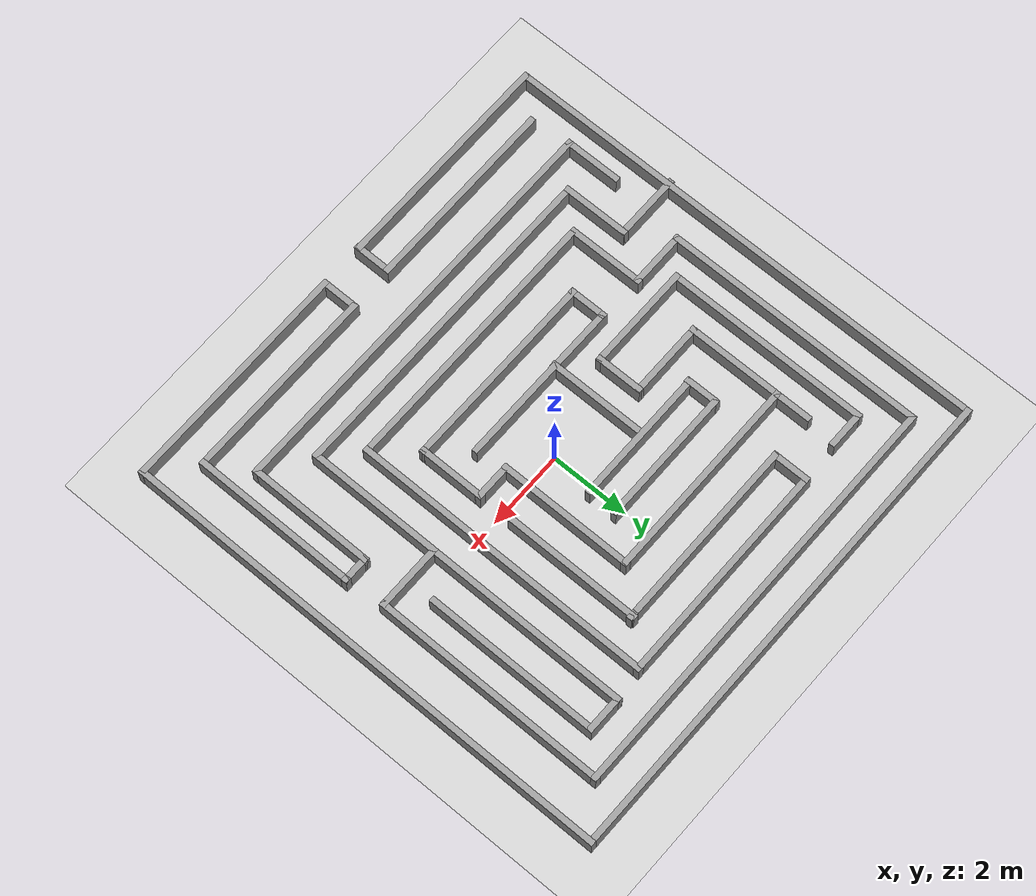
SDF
<sdf version="1.6">
 <world name="default">
  <light name="sun" type="directional">
   <pose>0 0 10 0 -0 0</pose>
   <diffuse>0.8 0.8 0.8 1</diffuse>
   <specular>0.1 0.1 0.1 1</specular>
   <attenuation>
    <range>1000</range>
    <constant>0.9</constant>
    <linear>0.01</linear>
    <quadratic>0.001</quadratic>
   </attenuation>
   <direction>-0.5 0.5 -1</direction>
  </light>
  <model name="ground_plane">
   <static>1</static>
   <link name="link">
    <collision name="collision">
     <geometry><plane><normal>0 0 1</normal><size>100 100</size></plane></geometry>
     <surface><friction><ode><mu>100</mu><mu2>50</mu2></ode></friction></surface>
    </collision>
    <visual name="visual">
     <cast_shadows>0</cast_shadows>
     <geometry><plane><normal>0 0 1</normal><size>100 100</size></plane></geometry>
     <material>
      <script><uri>file://media/materials/scripts/gazebo.material</uri><name>Gazebo/Grey</name></script>
     </material>
    </visual>
   </link>
  </model>
  <gravity>0 0 -9.8</gravity>
  <magnetic_field>6e-06 2.3e-05 -4.2e-05</magnetic_field>
  <atmosphere type="adiabatic"/>
  <physics name="default_physics" default="0" type="ode">
   <max_step_size>0.001</max_step_size>
   <real_time_factor>1</real_time_factor>
   <real_time_update_rate>1000</real_time_update_rate>
  </physics>
  <scene><ambient>0.4 0.4 0.4 1</ambient><background>0.7 0.7 0.7 1</background><shadows>1</shadows></scene>
  <spherical_coordinates>
   <surface_model>EARTH_WGS84</surface_model>
   <latitude_deg>0</latitude_deg>
   <longitude_deg>0</longitude_deg>
   <elevation>0</elevation>
   <heading_deg>0</heading_deg>
  </spherical_coordinates>
  <model name="laby3_0">
   <pose>-0.201423 -0.057556 0 0 -0 0</pose>
   <link name="Wall_100">
    <collision name="Wall_100_Collision">
     <geometry><box><size>5.25 0.15 0.5</size></box></geometry>
     <pose>0 0 0.25 0 -0 0</pose>
    </collision>
    <visual name="Wall_100_Visual">
     <pose>0 0 0.25 0 -0 0</pose>
     <geometry><box><size>5.25 0.15 0.5</size></box></geometry>
     <material>
      <script><uri>file://media/materials/scripts/gazebo.material</uri><name>Gazebo/Grey</name></script>
      <ambient>1 1 1 1</ambient>
     </material>
    </visual>
    <pose>-4.66272 1.97433 0 0 -0 1.5708</pose>
   </link>
   <link name="Wall_101">
    <collision name="Wall_101_Collision">
     <geometry><box><size>1 0.15 0.5</size></box></geometry>
     <pose>0 0 0.25 0 -0 0</pose>
    </collision>
    <visual name="Wall_101_Visual">
     <pose>0 0 0.25 0 -0 0</pose>
     <geometry><box><size>1 0.15 0.5</size></box></geometry>
     <material>
      <script><uri>file://media/materials/scripts/gazebo.material</uri><name>Gazebo/Grey</name></script>
      <ambient>1 1 1 1</ambient>
     </material>
    </visual>
    <pose>-4.23772 4.52433 0 0 -0 0</pose>
   </link>
   <link name="Wall_103">
    <collision name="Wall_103_Collision">
     <geometry><box><size>2.5 0.15 0.5</size></box></geometry>
     <pose>0 0 0.25 0 -0 0</pose>
    </collision>
    <visual name="Wall_103_Visual">
     <pose>0 0 0.25 0 -0 0</pose>
     <geometry><box><size>2.5 0.15 0.5</size></box></geometry>
     <material>
      <script><uri>file://media/materials/scripts/gazebo.material</uri><name>Gazebo/Grey</name></script>
      <ambient>1 1 1 1</ambient>
     </material>
    </visual>
    <pose>-1.3165 -0.060107 0 0 -0 1.5708</pose>
   </link>
   <link name="Wall_105">
    <collision name="Wall_105_Collision">
     <geometry><box><size>0.896241 0.15 0.5</size></box></geometry>
     <pose>0 0 0.25 0 -0 0</pose>
    </collision>
    <visual name="Wall_105_Visual">
     <pose>0 0 0.25 0 -0 0</pose>
     <geometry><box><size>0.896241 0.15 0.5</size></box></geometry>
     <material>
      <script><uri>file://media/materials/scripts/gazebo.material</uri><name>Gazebo/Grey</name></script>
      <ambient>1 1 1 1</ambient>
     </material>
    </visual>
    <pose>-2.9165 1.59177 0 0 -0 1.5708</pose>
   </link>
   <link name="Wall_106">
    <collision name="Wall_106_Collision">
     <geometry><box><size>3.5 0.15 0.5</size></box></geometry>
     <pose>0 0 0.25 0 -0 0</pose>
    </collision>
    <visual name="Wall_106_Visual">
     <pose>0 0 0.25 0 -0 0</pose>
     <geometry><box><size>3.5 0.15 0.5</size></box></geometry>
     <material>
      <script><uri>file://media/materials/scripts/gazebo.material</uri><name>Gazebo/Grey</name></script>
      <ambient>1 1 1 1</ambient>
     </material>
    </visual>
    <pose>-1.2415 1.96489 0 0 -0 0</pose>
   </link>
   <link name="Wall_108">
    <collision name="Wall_108_Collision">
     <geometry><box><size>3.5 0.15 0.5</size></box></geometry>
     <pose>0 0 0.25 0 -0 0</pose>
    </collision>
    <visual name="Wall_108_Visual">
     <pose>0 0 0.25 0 -0 0</pose>
     <geometry><box><size>3.5 0.15 0.5</size></box></geometry>
     <material>
      <script><uri>file://media/materials/scripts/gazebo.material</uri><name>Gazebo/Grey</name></script>
      <ambient>1 1 1 1</ambient>
     </material>
    </visual>
    <pose>-1.2415 1.24171 0 0 -0 3.14159</pose>
   </link>
   <link name="Wall_110">
    <collision name="Wall_110_Collision">
     <geometry><box><size>1 0.15 0.5</size></box></geometry>
     <pose>0 0 0.25 0 -0 0</pose>
    </collision>
    <visual name="Wall_110_Visual">
     <pose>0 0 0.25 0 -0 0</pose>
     <geometry><box><size>1 0.15 0.5</size></box></geometry>
     <material>
      <script><uri>file://media/materials/scripts/gazebo.material</uri><name>Gazebo/Grey</name></script>
      <ambient>1 1 1 1</ambient>
     </material>
    </visual>
    <pose>-3.91272 3.29933 0 0 -0 1.5708</pose>
   </link>
   <link name="Wall_51">
    <collision name="Wall_51_Collision">
     <geometry><box><size>5.75 0.15 0.5</size></box></geometry>
     <pose>0 0 0.25 0 -0 0</pose>
    </collision>
    <visual name="Wall_51_Visual">
     <pose>0 0 0.25 0 -0 0</pose>
     <geometry><box><size>5.75 0.15 0.5</size></box></geometry>
     <material>
      <script><uri>file://media/materials/scripts/gazebo.material</uri><name>Gazebo/Grey</name></script>
      <ambient>1 1 1 1</ambient>
     </material>
    </visual>
    <pose>-3.48226 -6.33859 0 0 -0 3.14159</pose>
   </link>
   <link name="Wall_52">
    <collision name="Wall_52_Collision">
     <geometry><box><size>12.75 0.15 0.5</size></box></geometry>
     <pose>0 0 0.25 0 -0 0</pose>
    </collision>
    <visual name="Wall_52_Visual">
     <pose>0 0 0.25 0 -0 0</pose>
     <geometry><box><size>12.75 0.15 0.5</size></box></geometry>
     <material>
      <script><uri>file://media/materials/scripts/gazebo.material</uri><name>Gazebo/Grey</name></script>
      <ambient>1 1 1 1</ambient>
     </material>
    </visual>
    <pose>-6.28226 -0.038588 0 0 -0 1.5708</pose>
   </link>
   <link name="Wall_53">
    <collision name="Wall_53_Collision">
     <geometry><box><size>12.75 0.15 0.5</size></box></geometry>
     <pose>0 0 0.25 0 -0 0</pose>
    </collision>
    <visual name="Wall_53_Visual">
     <pose>0 0 0.25 0 -0 0</pose>
     <geometry><box><size>12.75 0.15 0.5</size></box></geometry>
     <material>
      <script><uri>file://media/materials/scripts/gazebo.material</uri><name>Gazebo/Grey</name></script>
      <ambient>1 1 1 1</ambient>
     </material>
    </visual>
    <pose>0.017744 6.26141 0 0 -0 0</pose>
   </link>
   <link name="Wall_54">
    <collision name="Wall_54_Collision">
     <geometry><box><size>12.75 0.15 0.5</size></box></geometry>
     <pose>0 0 0.25 0 -0 0</pose>
    </collision>
    <visual name="Wall_54_Visual">
     <pose>0 0 0.25 0 -0 0</pose>
     <geometry><box><size>12.75 0.15 0.5</size></box></geometry>
     <material>
      <script><uri>file://media/materials/scripts/gazebo.material</uri><name>Gazebo/Grey</name></script>
      <ambient>1 1 1 1</ambient>
     </material>
    </visual>
    <pose>6.31774 -0.038588 0 0 0 -1.5708</pose>
   </link>
   <link name="Wall_55">
    <collision name="Wall_55_Collision">
     <geometry><box><size>6 0.15 0.5</size></box></geometry>
     <pose>0 0 0.25 0 -0 0</pose>
    </collision>
    <visual name="Wall_55_Visual">
     <pose>0 0 0.25 0 -0 0</pose>
     <geometry><box><size>6 0.15 0.5</size></box></geometry>
     <material>
      <script><uri>file://media/materials/scripts/gazebo.material</uri><name>Gazebo/Grey</name></script>
      <ambient>1 1 1 1</ambient>
     </material>
    </visual>
    <pose>3.39274 -6.33859 0 0 -0 3.14159</pose>
   </link>
   <link name="Wall_56">
    <collision name="Wall_56_Collision">
     <geometry><box><size>1 0.15 0.5</size></box></geometry>
     <pose>0 0 0.25 0 -0 0</pose>
    </collision>
    <visual name="Wall_56_Visual">
     <pose>0 0 0.25 0 -0 0</pose>
     <geometry><box><size>1 0.15 0.5</size></box></geometry>
     <material>
      <script><uri>file://media/materials/scripts/gazebo.material</uri><name>Gazebo/Grey</name></script>
      <ambient>1 1 1 1</ambient>
     </material>
    </visual>
    <pose>0.467744 -5.91359 0 0 -0 1.5708</pose>
   </link>
   <link name="Wall_57">
    <collision name="Wall_57_Collision">
     <geometry><box><size>5 0.15 0.5</size></box></geometry>
     <pose>0 0 0.25 0 -0 0</pose>
    </collision>
    <visual name="Wall_57_Visual">
     <pose>0 0 0.25 0 -0 0</pose>
     <geometry><box><size>5 0.15 0.5</size></box></geometry>
     <material>
      <script><uri>file://media/materials/scripts/gazebo.material</uri><name>Gazebo/Grey</name></script>
      <ambient>1 1 1 1</ambient>
     </material>
    </visual>
    <pose>2.89274 -5.48859 0 0 -0 0</pose>
   </link>
   <link name="Wall_58">
    <collision name="Wall_58_Collision">
     <geometry><box><size>4.25 0.15 0.5</size></box></geometry>
     <pose>0 0 0.25 0 -0 0</pose>
    </collision>
    <visual name="Wall_58_Visual">
     <pose>0 0 0.25 0 -0 0</pose>
     <geometry><box><size>4.25 0.15 0.5</size></box></geometry>
     <material>
      <script><uri>file://media/materials/scripts/gazebo.material</uri><name>Gazebo/Grey</name></script>
      <ambient>1 1 1 1</ambient>
     </material>
    </visual>
    <pose>5.31774 -3.43859 0 0 -0 1.5708</pose>
   </link>
   <link name="Wall_59">
    <collision name="Wall_59_Collision">
     <geometry><box><size>0.75 0.15 0.5</size></box></geometry>
     <pose>0 0 0.25 0 -0 0</pose>
    </collision>
    <visual name="Wall_59_Visual">
     <pose>0 0 0.25 0 -0 0</pose>
     <geometry><box><size>0.75 0.15 0.5</size></box></geometry>
     <material>
      <script><uri>file://media/materials/scripts/gazebo.material</uri><name>Gazebo/Grey</name></script>
      <ambient>1 1 1 1</ambient>
     </material>
    </visual>
    <pose>5.01774 -1.38859 0 0 -0 3.14159</pose>
   </link>
   <link name="Wall_60">
    <collision name="Wall_60_Collision">
     <geometry><box><size>3.25 0.15 0.5</size></box></geometry>
     <pose>0 0 0.25 0 -0 0</pose>
    </collision>
    <visual name="Wall_60_Visual">
     <pose>0 0 0.25 0 -0 0</pose>
     <geometry><box><size>3.25 0.15 0.5</size></box></geometry>
     <material>
      <script><uri>file://media/materials/scripts/gazebo.material</uri><name>Gazebo/Grey</name></script>
      <ambient>1 1 1 1</ambient>
     </material>
    </visual>
    <pose>4.71774 -2.93859 0 0 0 -1.5708</pose>
   </link>
   <link name="Wall_61">
    <collision name="Wall_61_Collision">
     <geometry><box><size>10.5 0.15 0.5</size></box></geometry>
     <pose>0 0 0.25 0 -0 0</pose>
    </collision>
    <visual name="Wall_61_Visual">
     <pose>0 0 0.25 0 -0 0</pose>
     <geometry><box><size>10.5 0.15 0.5</size></box></geometry>
     <material>
      <script><uri>file://media/materials/scripts/gazebo.material</uri><name>Gazebo/Grey</name></script>
      <ambient>1 1 1 1</ambient>
     </material>
    </visual>
    <pose>-0.457257 -4.48859 0 0 -0 3.14159</pose>
   </link>
   <link name="Wall_62">
    <collision name="Wall_62_Collision">
     <geometry><box><size>1.5 0.15 0.5</size></box></geometry>
     <pose>0 0 0.25 0 -0 0</pose>
    </collision>
    <visual name="Wall_62_Visual">
     <pose>0 0 0.25 0 -0 0</pose>
     <geometry><box><size>1.5 0.15 0.5</size></box></geometry>
     <material>
      <script><uri>file://media/materials/scripts/gazebo.material</uri><name>Gazebo/Grey</name></script>
      <ambient>1 1 1 1</ambient>
     </material>
    </visual>
    <pose>-5.63226 -3.81359 0 0 -0 1.5708</pose>
   </link>
   <link name="Wall_64">
    <collision name="Wall_64_Collision">
     <geometry><box><size>5 0.15 0.5</size></box></geometry>
     <pose>0 0 0.25 0 -0 0</pose>
    </collision>
    <visual name="Wall_64_Visual">
     <pose>0 0 0.25 0 -0 0</pose>
     <geometry><box><size>5 0.15 0.5</size></box></geometry>
     <material>
      <script><uri>file://media/materials/scripts/gazebo.material</uri><name>Gazebo/Grey</name></script>
      <ambient>1 1 1 1</ambient>
     </material>
    </visual>
    <pose>-3.08566 -5.50541 0 0 -0 0</pose>
   </link>
   <link name="Wall_65">
    <collision name="Wall_65_Collision">
     <geometry><box><size>1 0.15 0.5</size></box></geometry>
     <pose>0 0 0.25 0 -0 0</pose>
    </collision>
    <visual name="Wall_65_Visual">
     <pose>0 0 0.25 0 -0 0</pose>
     <geometry><box><size>1 0.15 0.5</size></box></geometry>
     <material>
      <script><uri>file://media/materials/scripts/gazebo.material</uri><name>Gazebo/Grey</name></script>
      <ambient>1 1 1 1</ambient>
     </material>
    </visual>
    <pose>-0.660656 -5.93041 0 0 0 -1.5708</pose>
   </link>
   <link name="Wall_67">
    <collision name="Wall_67_Collision">
     <geometry><box><size>1.75 0.15 0.5</size></box></geometry>
     <pose>0 0 0.25 0 -0 0</pose>
    </collision>
    <visual name="Wall_67_Visual">
     <pose>0 0 0.25 0 -0 0</pose>
     <geometry><box><size>1.75 0.15 0.5</size></box></geometry>
     <material>
      <script><uri>file://media/materials/scripts/gazebo.material</uri><name>Gazebo/Grey</name></script>
      <ambient>1 1 1 1</ambient>
     </material>
    </visual>
    <pose>-5.53492 -2.15684 0 0 -0 0</pose>
   </link>
   <link name="Wall_68">
    <collision name="Wall_68_Collision">
     <geometry><box><size>1.75 0.15 0.5</size></box></geometry>
     <pose>0 0 0.25 0 -0 0</pose>
    </collision>
    <visual name="Wall_68_Visual">
     <pose>0 0 0.25 0 -0 0</pose>
     <geometry><box><size>1.75 0.15 0.5</size></box></geometry>
     <material>
      <script><uri>file://media/materials/scripts/gazebo.material</uri><name>Gazebo/Grey</name></script>
      <ambient>1 1 1 1</ambient>
     </material>
    </visual>
    <pose>-4.73492 -2.95684 0 0 0 -1.5708</pose>
   </link>
   <link name="Wall_69">
    <collision name="Wall_69_Collision">
     <geometry><box><size>8.5 0.15 0.5</size></box></geometry>
     <pose>0 0 0.25 0 -0 0</pose>
    </collision>
    <visual name="Wall_69_Visual">
     <pose>0 0 0.25 0 -0 0</pose>
     <geometry><box><size>8.5 0.15 0.5</size></box></geometry>
     <material>
      <script><uri>file://media/materials/scripts/gazebo.material</uri><name>Gazebo/Grey</name></script>
      <ambient>1 1 1 1</ambient>
     </material>
    </visual>
    <pose>-0.55992 -3.75684 0 0 -0 0</pose>
   </link>
   <link name="Wall_70">
    <collision name="Wall_70_Collision">
     <geometry><box><size>3.5 0.15 0.5</size></box></geometry>
     <pose>0 0 0.25 0 -0 0</pose>
    </collision>
    <visual name="Wall_70_Visual">
     <pose>0 0 0.25 0 -0 0</pose>
     <geometry><box><size>3.5 0.15 0.5</size></box></geometry>
     <material>
      <script><uri>file://media/materials/scripts/gazebo.material</uri><name>Gazebo/Grey</name></script>
      <ambient>1 1 1 1</ambient>
     </material>
    </visual>
    <pose>3.61508 -2.08184 0 0 -0 1.5708</pose>
   </link>
   <link name="Wall_71">
    <collision name="Wall_71_Collision">
     <geometry><box><size>1.75 0.15 0.5</size></box></geometry>
     <pose>0 0 0.25 0 -0 0</pose>
    </collision>
    <visual name="Wall_71_Visual">
     <pose>0 0 0.25 0 -0 0</pose>
     <geometry><box><size>1.75 0.15 0.5</size></box></geometry>
     <material>
      <script><uri>file://media/materials/scripts/gazebo.material</uri><name>Gazebo/Grey</name></script>
      <ambient>1 1 1 1</ambient>
     </material>
    </visual>
    <pose>4.41508 -0.406841 0 0 -0 0</pose>
   </link>
   <link name="Wall_72">
    <collision name="Wall_72_Collision">
     <geometry><box><size>6 0.15 0.5</size></box></geometry>
     <pose>0 0 0.25 0 -0 0</pose>
    </collision>
    <visual name="Wall_72_Visual">
     <pose>0 0 0.25 0 -0 0</pose>
     <geometry><box><size>6 0.15 0.5</size></box></geometry>
     <material>
      <script><uri>file://media/materials/scripts/gazebo.material</uri><name>Gazebo/Grey</name></script>
      <ambient>1 1 1 1</ambient>
     </material>
    </visual>
    <pose>5.21508 2.51816 0 0 -0 1.5708</pose>
   </link>
   <link name="Wall_73">
    <collision name="Wall_73_Collision">
     <geometry><box><size>10.75 0.15 0.5</size></box></geometry>
     <pose>0 0 0.25 0 -0 0</pose>
    </collision>
    <visual name="Wall_73_Visual">
     <pose>0 0 0.25 0 -0 0</pose>
     <geometry><box><size>10.75 0.15 0.5</size></box></geometry>
     <material>
      <script><uri>file://media/materials/scripts/gazebo.material</uri><name>Gazebo/Grey</name></script>
      <ambient>1 1 1 1</ambient>
     </material>
    </visual>
    <pose>-0.08492 5.44316 0 0 -0 3.14159</pose>
   </link>
   <link name="Wall_74">
    <collision name="Wall_74_Collision">
     <geometry><box><size>6.75 0.15 0.5</size></box></geometry>
     <pose>0 0 0.25 0 -0 0</pose>
    </collision>
    <visual name="Wall_74_Visual">
     <pose>0 0 0.25 0 -0 0</pose>
     <geometry><box><size>6.75 0.15 0.5</size></box></geometry>
     <material>
      <script><uri>file://media/materials/scripts/gazebo.material</uri><name>Gazebo/Grey</name></script>
      <ambient>1 1 1 1</ambient>
     </material>
    </visual>
    <pose>-5.38492 2.14316 0 0 0 -1.5708</pose>
   </link>
   <link name="Wall_75">
    <collision name="Wall_75_Collision">
     <geometry><box><size>1.5 0.15 0.5</size></box></geometry>
     <pose>0 0 0.25 0 -0 0</pose>
    </collision>
    <visual name="Wall_75_Visual">
     <pose>0 0 0.25 0 -0 0</pose>
     <geometry><box><size>1.5 0.15 0.5</size></box></geometry>
     <material>
      <script><uri>file://media/materials/scripts/gazebo.material</uri><name>Gazebo/Grey</name></script>
      <ambient>1 1 1 1</ambient>
     </material>
    </visual>
    <pose>-4.70992 -1.15684 0 0 -0 0</pose>
   </link>
   <link name="Wall_76">
    <collision name="Wall_76_Collision">
     <geometry><box><size>2 0.15 0.5</size></box></geometry>
     <pose>0 0 0.25 0 -0 0</pose>
    </collision>
    <visual name="Wall_76_Visual">
     <pose>0 0 0.25 0 -0 0</pose>
     <geometry><box><size>2 0.15 0.5</size></box></geometry>
     <material>
      <script><uri>file://media/materials/scripts/gazebo.material</uri><name>Gazebo/Grey</name></script>
      <ambient>1 1 1 1</ambient>
     </material>
    </visual>
    <pose>-4.03492 -2.08184 0 0 0 -1.5708</pose>
   </link>
   <link name="Wall_77">
    <collision name="Wall_77_Collision">
     <geometry><box><size>7 0.15 0.5</size></box></geometry>
     <pose>0 0 0.25 0 -0 0</pose>
    </collision>
    <visual name="Wall_77_Visual">
     <pose>0 0 0.25 0 -0 0</pose>
     <geometry><box><size>7 0.15 0.5</size></box></geometry>
     <material>
      <script><uri>file://media/materials/scripts/gazebo.material</uri><name>Gazebo/Grey</name></script>
      <ambient>1 1 1 1</ambient>
     </material>
    </visual>
    <pose>-0.60992 -3.00684 0 0 -0 0</pose>
   </link>
   <link name="Wall_78">
    <collision name="Wall_78_Collision">
     <geometry><box><size>7.75 0.15 0.5</size></box></geometry>
     <pose>0 0 0.25 0 -0 0</pose>
    </collision>
    <visual name="Wall_78_Visual">
     <pose>0 0 0.25 0 -0 0</pose>
     <geometry><box><size>7.75 0.15 0.5</size></box></geometry>
     <material>
      <script><uri>file://media/materials/scripts/gazebo.material</uri><name>Gazebo/Grey</name></script>
      <ambient>1 1 1 1</ambient>
     </material>
    </visual>
    <pose>2.81508 0.793159 0 0 -0 1.5708</pose>
   </link>
   <link name="Wall_79">
    <collision name="Wall_79_Collision">
     <geometry><box><size>5.75 0.15 0.5</size></box></geometry>
     <pose>0 0 0.25 0 -0 0</pose>
    </collision>
    <visual name="Wall_79_Visual">
     <pose>0 0 0.25 0 -0 0</pose>
     <geometry><box><size>5.75 0.15 0.5</size></box></geometry>
     <material>
      <script><uri>file://media/materials/scripts/gazebo.material</uri><name>Gazebo/Grey</name></script>
      <ambient>1 1 1 1</ambient>
     </material>
    </visual>
    <pose>0.01508 4.59316 0 0 -0 3.14159</pose>
   </link>
   <link name="Wall_80">
    <collision name="Wall_80_Collision">
     <geometry><box><size>1 0.15 0.5</size></box></geometry>
     <pose>0 0 0.25 0 -0 0</pose>
    </collision>
    <visual name="Wall_80_Visual">
     <pose>0 0 0.25 0 -0 0</pose>
     <geometry><box><size>1 0.15 0.5</size></box></geometry>
     <material>
      <script><uri>file://media/materials/scripts/gazebo.material</uri><name>Gazebo/Grey</name></script>
      <ambient>1 1 1 1</ambient>
     </material>
    </visual>
    <pose>-2.78492 4.16816 0 0 0 -1.5708</pose>
   </link>
   <link name="Wall_81">
    <collision name="Wall_81_Collision">
     <geometry><box><size>4.75 0.15 0.5</size></box></geometry>
     <pose>0 0 0.25 0 -0 0</pose>
    </collision>
    <visual name="Wall_81_Visual">
     <pose>0 0 0.25 0 -0 0</pose>
     <geometry><box><size>4.75 0.15 0.5</size></box></geometry>
     <material>
      <script><uri>file://media/materials/scripts/gazebo.material</uri><name>Gazebo/Grey</name></script>
      <ambient>1 1 1 1</ambient>
     </material>
    </visual>
    <pose>-0.48492 3.74316 0 0 -0 0</pose>
   </link>
   <link name="Wall_82">
    <collision name="Wall_82_Collision">
     <geometry><box><size>0.369322 0.15 0.5</size></box></geometry>
     <pose>0 0 0.25 0 -0 0</pose>
    </collision>
    <visual name="Wall_82_Visual">
     <pose>0 0 0.25 0 -0 0</pose>
     <geometry><box><size>0.369322 0.15 0.5</size></box></geometry>
     <material>
      <script><uri>file://media/materials/scripts/gazebo.material</uri><name>Gazebo/Grey</name></script>
      <ambient>1 1 1 1</ambient>
     </material>
    </visual>
    <pose>1.92474 3.74316 0 0 -0 0</pose>
   </link>
   <link name="Wall_83">
    <collision name="Wall_83_Collision">
     <geometry><box><size>3.5 0.15 0.5</size></box></geometry>
     <pose>0 0 0.25 0 -0 0</pose>
    </collision>
    <visual name="Wall_83_Visual">
     <pose>0 0 0.25 0 -0 0</pose>
     <geometry><box><size>3.5 0.15 0.5</size></box></geometry>
     <material>
      <script><uri>file://media/materials/scripts/gazebo.material</uri><name>Gazebo/Grey</name></script>
      <ambient>1 1 1 1</ambient>
     </material>
    </visual>
    <pose>2.00457 2.09799 0 0 0 -1.5708</pose>
   </link>
   <link name="Wall_85">
    <collision name="Wall_85_Collision">
     <geometry><box><size>5.25 0.15 0.5</size></box></geometry>
     <pose>0 0 0.25 0 -0 0</pose>
    </collision>
    <visual name="Wall_85_Visual">
     <pose>0 0 0.25 0 -0 0</pose>
     <geometry><box><size>5.25 0.15 0.5</size></box></geometry>
     <material>
      <script><uri>file://media/materials/scripts/gazebo.material</uri><name>Gazebo/Grey</name></script>
      <ambient>1 1 1 1</ambient>
     </material>
    </visual>
    <pose>3.61508 2.14316 0 0 -0 1.5708</pose>
   </link>
   <link name="Wall_86">
    <collision name="Wall_86_Collision">
     <geometry><box><size>1 0.15 0.5</size></box></geometry>
     <pose>0 0 0.25 0 -0 0</pose>
    </collision>
    <visual name="Wall_86_Visual">
     <pose>0 0 0.25 0 -0 0</pose>
     <geometry><box><size>1 0.15 0.5</size></box></geometry>
     <material>
      <script><uri>file://media/materials/scripts/gazebo.material</uri><name>Gazebo/Grey</name></script>
      <ambient>1 1 1 1</ambient>
     </material>
    </visual>
    <pose>4.04008 4.69316 0 0 -0 0</pose>
   </link>
   <link name="Wall_87">
    <collision name="Wall_87_Collision">
     <geometry><box><size>4.5 0.15 0.5</size></box></geometry>
     <pose>0 0 0.25 0 -0 0</pose>
    </collision>
    <visual name="Wall_87_Visual">
     <pose>0 0 0.25 0 -0 0</pose>
     <geometry><box><size>4.5 0.15 0.5</size></box></geometry>
     <material>
      <script><uri>file://media/materials/scripts/gazebo.material</uri><name>Gazebo/Grey</name></script>
      <ambient>1 1 1 1</ambient>
     </material>
    </visual>
    <pose>4.46508 2.51816 0 0 0 -1.5708</pose>
   </link>
   <link name="Wall_89">
    <collision name="Wall_89_Collision">
     <geometry><box><size>4.3365 0.15 0.5</size></box></geometry>
     <pose>0 0 0.25 0 -0 0</pose>
    </collision>
    <visual name="Wall_89_Visual">
     <pose>0 0 0.25 0 -0 0</pose>
     <geometry><box><size>4.3365 0.15 0.5</size></box></geometry>
     <material>
      <script><uri>file://media/materials/scripts/gazebo.material</uri><name>Gazebo/Grey</name></script>
      <ambient>1 1 1 1</ambient>
     </material>
    </visual>
    <pose>-0.805953 -1.21703 0 0 -0 3.13746</pose>
   </link>
   <link name="Wall_90">
    <collision name="Wall_90_Collision">
     <geometry><box><size>1 0.15 0.5</size></box></geometry>
     <pose>0 0 0.25 0 -0 0</pose>
    </collision>
    <visual name="Wall_90_Visual">
     <pose>0 0 0.25 0 -0 0</pose>
     <geometry><box><size>1 0.15 0.5</size></box></geometry>
     <material>
      <script><uri>file://media/materials/scripts/gazebo.material</uri><name>Gazebo/Grey</name></script>
      <ambient>1 1 1 1</ambient>
     </material>
    </visual>
    <pose>-2.89919 -1.64203 0 0 0 -1.5708</pose>
   </link>
   <link name="Wall_91">
    <collision name="Wall_91_Collision">
     <geometry><box><size>5.0865 0.15 0.5</size></box></geometry>
     <pose>0 0 0.25 0 -0 0</pose>
    </collision>
    <visual name="Wall_91_Visual">
     <pose>0 0 0.25 0 -0 0</pose>
     <geometry><box><size>5.0865 0.15 0.5</size></box></geometry>
     <material>
      <script><uri>file://media/materials/scripts/gazebo.material</uri><name>Gazebo/Grey</name></script>
      <ambient>1 1 1 1</ambient>
     </material>
    </visual>
    <pose>-0.430953 -2.06703 0 0 0 -0.003503</pose>
   </link>
   <link name="Wall_92">
    <collision name="Wall_92_Collision">
     <geometry><box><size>1.75 0.15 0.5</size></box></geometry>
     <pose>0 0 0.25 0 -0 0</pose>
    </collision>
    <visual name="Wall_92_Visual">
     <pose>0 0 0.25 0 -0 0</pose>
     <geometry><box><size>1.75 0.15 0.5</size></box></geometry>
     <material>
      <script><uri>file://media/materials/scripts/gazebo.material</uri><name>Gazebo/Grey</name></script>
      <ambient>1 1 1 1</ambient>
     </material>
    </visual>
    <pose>2.03728 -1.27567 0 0 -0 1.5708</pose>
   </link>
   <link name="Wall_93">
    <collision name="Wall_93_Collision">
     <geometry><box><size>1 0.15 0.5</size></box></geometry>
     <pose>0 0 0.25 0 -0 0</pose>
    </collision>
    <visual name="Wall_93_Visual">
     <pose>0 0 0.25 0 -0 0</pose>
     <geometry><box><size>1 0.15 0.5</size></box></geometry>
     <material>
      <script><uri>file://media/materials/scripts/gazebo.material</uri><name>Gazebo/Grey</name></script>
      <ambient>1 1 1 1</ambient>
     </material>
    </visual>
    <pose>1.61228 -0.475671 0 0 -0 3.14159</pose>
   </link>
   <link name="Wall_94">
    <collision name="Wall_94_Collision">
     <geometry><box><size>3.5 0.15 0.5</size></box></geometry>
     <pose>0 0 0.25 0 -0 0</pose>
    </collision>
    <visual name="Wall_94_Visual">
     <pose>0 0 0.25 0 -0 0</pose>
     <geometry><box><size>3.5 0.15 0.5</size></box></geometry>
     <material>
      <script><uri>file://media/materials/scripts/gazebo.material</uri><name>Gazebo/Grey</name></script>
      <ambient>1 1 1 1</ambient>
     </material>
    </visual>
    <pose>1.18728 1.19933 0 0 -0 1.5708</pose>
   </link>
   <link name="Wall_95">
    <collision name="Wall_95_Collision">
     <geometry><box><size>5.25 0.15 0.5</size></box></geometry>
     <pose>0 0 0.25 0 -0 0</pose>
    </collision>
    <visual name="Wall_95_Visual">
     <pose>0 0 0.25 0 -0 0</pose>
     <geometry><box><size>5.25 0.15 0.5</size></box></geometry>
     <material>
      <script><uri>file://media/materials/scripts/gazebo.material</uri><name>Gazebo/Grey</name></script>
      <ambient>1 1 1 1</ambient>
     </material>
    </visual>
    <pose>-1.36272 2.87433 0 0 -0 3.14159</pose>
   </link>
   <link name="Wall_96">
    <collision name="Wall_96_Collision">
     <geometry><box><size>2.5 0.15 0.5</size></box></geometry>
     <pose>0 0 0.25 0 -0 0</pose>
    </collision>
    <visual name="Wall_96_Visual">
     <pose>0 0 0.25 0 -0 0</pose>
     <geometry><box><size>2.5 0.15 0.5</size></box></geometry>
     <material>
      <script><uri>file://media/materials/scripts/gazebo.material</uri><name>Gazebo/Grey</name></script>
      <ambient>1 1 1 1</ambient>
     </material>
    </visual>
    <pose>-3.91272 1.69933 0 0 0 -1.5708</pose>
   </link>
   <link name="Wall_97">
    <collision name="Wall_97_Collision">
     <geometry><box><size>2 0.15 0.5</size></box></geometry>
     <pose>0 0 0.25 0 -0 0</pose>
    </collision>
    <visual name="Wall_97_Visual">
     <pose>0 0 0.25 0 -0 0</pose>
     <geometry><box><size>2 0.15 0.5</size></box></geometry>
     <material>
      <script><uri>file://media/materials/scripts/gazebo.material</uri><name>Gazebo/Grey</name></script>
      <ambient>1 1 1 1</ambient>
     </material>
    </visual>
    <pose>-2.98772 0.524329 0 0 -0 0</pose>
   </link>
   <link name="Wall_98">
    <collision name="Wall_98_Collision">
     <geometry><box><size>1.25 0.15 0.5</size></box></geometry>
     <pose>0 0 0.25 0 -0 0</pose>
    </collision>
    <visual name="Wall_98_Visual">
     <pose>0 0 0.25 0 -0 0</pose>
     <geometry><box><size>1.25 0.15 0.5</size></box></geometry>
     <material>
      <script><uri>file://media/materials/scripts/gazebo.material</uri><name>Gazebo/Grey</name></script>
      <ambient>1 1 1 1</ambient>
     </material>
    </visual>
    <pose>-2.06272 -0.025671 0 0 0 -1.5708</pose>
   </link>
   <link name="Wall_99">
    <collision name="Wall_99_Collision">
     <geometry><box><size>2.75 0.15 0.5</size></box></geometry>
     <pose>0 0 0.25 0 -0 0</pose>
    </collision>
    <visual name="Wall_99_Visual">
     <pose>0 0 0.25 0 -0 0</pose>
     <geometry><box><size>2.75 0.15 0.5</size></box></geometry>
     <material>
      <script><uri>file://media/materials/scripts/gazebo.material</uri><name>Gazebo/Grey</name></script>
      <ambient>1 1 1 1</ambient>
     </material>
    </visual>
    <pose>-3.36272 -0.575671 0 0 -0 3.14159</pose>
   </link>
   <static>1</static>
  </model>
 </world>
</sdf>
